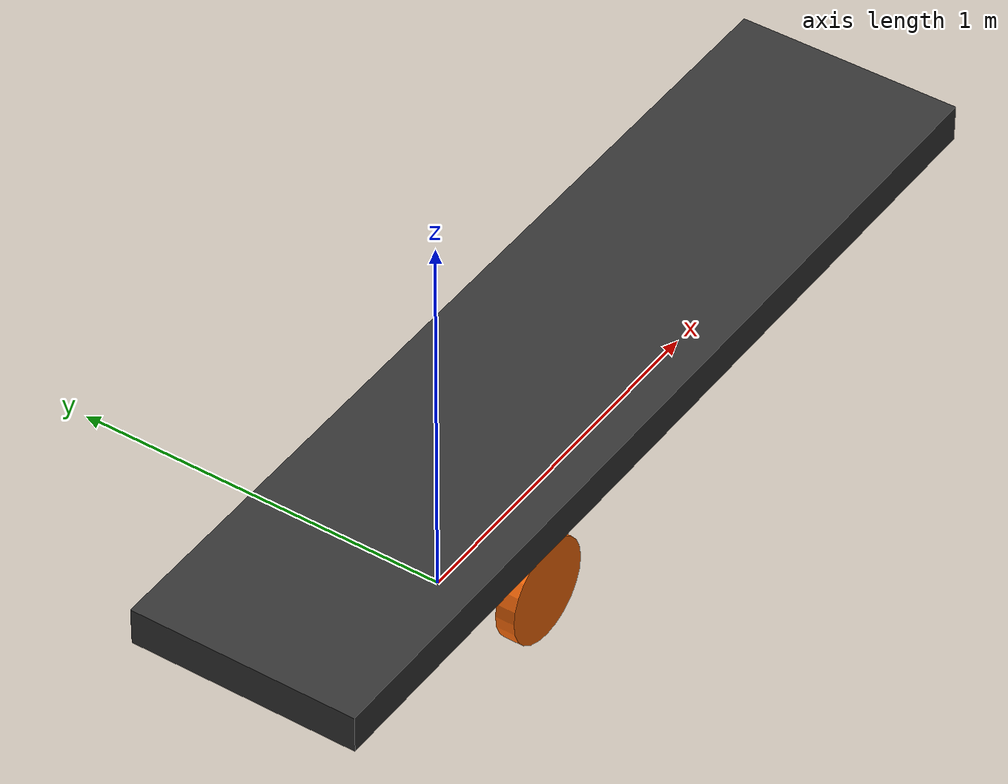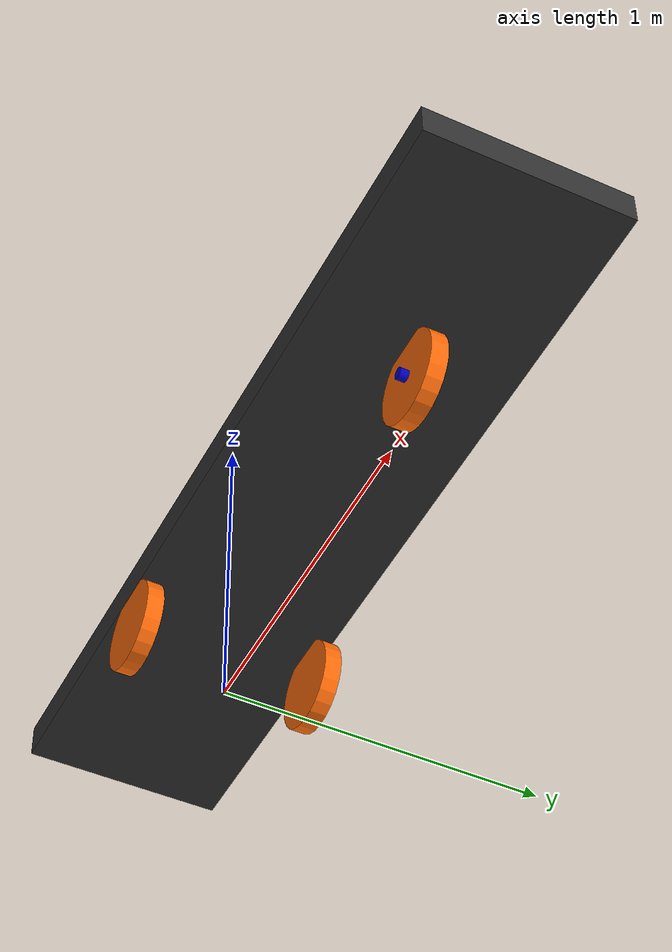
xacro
<?xml version="1.0"?>
<robot xmlns:xacro="http://www.ros.org/wiki/xacro" name="tricycle" >

  <!-- Import Rviz colors -->
  <xacro:include filename="$(find gazebo_plugins)/test/tricycle_drive/xacro/materials.xacro" />

  <!-- Import robot  -->
  <xacro:include filename="$(find gazebo_plugins)/test/tricycle_drive/xacro/tricycle/tricycle_body.xacro"/>
  <xacro:tricycle_body parent="base_link" meshes="package://gazebo_plugins/test/tricycle_drive/meshes/tricycle"/>
</robot>

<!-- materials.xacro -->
<robot>

  <material name="black">
    <color rgba="0.0 0.0 0.0 1.0"/>
  </material>

  <material name="blue">
    <color rgba="0.0 0.0 0.8 1.0"/>
  </material>

  <material name="green">
    <color rgba="0.0 0.8 0.0 1.0"/>
  </material>

  <material name="grey">
    <color rgba="0.2 0.2 0.2 1.0"/>
  </material>

  <material name="orange">
    <color rgba="${255/255} ${108/255} ${10/255} 1.0"/>
  </material>

  <material name="brown">
    <color rgba="${222/255} ${207/255} ${195/255} 1.0"/>
  </material>

  <material name="red">
    <color rgba="0.8 0.0 0.0 1.0"/>
  </material>

  <material name="white">
    <color rgba="1.0 1.0 1.0 1.0"/>
  </material>

</robot>

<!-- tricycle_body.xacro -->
<robot xmlns:xacro="http://www.ros.org/wiki/xacro">
  <xacro:property name="M_PI" value="3.1415926535897931" />
  <xacro:property name="radius_actuated_wheel" value="0.135" />
  <xacro:property name="radius_encoder_wheel" value="0.135" />

  <xacro:include filename="inertia_tensors.xacro"/>
  <xacro:include filename="tricycle_chassis.xacro"/>
  <xacro:include filename="wheel.xacro"/>
  <xacro:include filename="wheel_actuated.xacro"/>
  <xacro:include filename="tricycle_plugins.xacro"/>

  <xacro:macro name="tricycle_body" params="parent meshes">

    <!-- base_link -->
    <link name="${parent}"/>

    <!-- Chassis -->
    <xacro:tricycle_chassis name="chassis" parent="${parent}" xyz="0.5 0 0.3" rpy="0 0 0"  meshes="${meshes}"/>

    <!-- Wheels  -->
    <xacro:wheel name="right"   parent="${parent}"  xyz="0.0   0.274 ${radius_encoder_wheel}" rpy="${-M_PI/2} 0 0" radius="${radius_encoder_wheel}" length="0.05" meshes="${meshes}"/>
    <xacro:wheel name="left"    parent="${parent}"  xyz="0.0  -0.274 ${radius_encoder_wheel}" rpy="${-M_PI/2} 0 0" radius="${radius_encoder_wheel}" length="0.05" meshes="${meshes}"/>
    <xacro:wheel_actuated name="front"  parent="${parent}"  xyz="1.14  0.0   ${radius_actuated_wheel}" rpy="${-M_PI/2} 0 0" radius="${radius_actuated_wheel}" length="0.05" meshes="${meshes}"/>

    <!-- Motor plugin -->
    <xacro:tricycle_drive />

  </xacro:macro>
</robot>

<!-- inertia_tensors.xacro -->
<!-- Thanks to Martin Guenther
  see https://github.com/uos/uos_tools/blob/fuerte/uos_common_urdf/common.xacro and
  see http://answers.gazebosim.org/question/4372/the-inertia-matrix-explained/ -->
<robot xmlns:xacro="http://ros.org/wiki/xacro">
  <xacro:property name="M_PI" value="3.1415926535897931" />

  <!-- see https://secure.wikimedia.org/wikipedia/en/wiki/List_of_moment_of_inertia_tensors -->

  <!-- #################### versions without origin #################### -->
  <xacro:macro name="sphere_inertial" params="radius mass">
    <inertial>
      <mass value="${mass}" />
      <origin xyz="0 0 0" />
      <inertia ixx="${0.4 * mass * radius * radius}" ixy="0.0" ixz="0.0"
        iyy="${0.4 * mass * radius * radius}" iyz="0.0"
        izz="${0.4 * mass * radius * radius}" />
    </inertial>
  </xacro:macro>

  <xacro:macro name="cylinder_inertial" params="radius length mass">
    <inertial>
      <mass value="${mass}" />
      <origin xyz="0 0 0" />
      <inertia ixx="${0.0833333 * mass * (3 * radius * radius + length * length)}" ixy="0.0" ixz="0.0"
        iyy="${0.0833333 * mass * (3 * radius * radius + length * length)}" iyz="0.0"
        izz="${0.5 * mass * radius * radius}" />
    </inertial>
  </xacro:macro>

  <xacro:macro name="box_inertial" params="x y z mass">
    <inertial>
      <mass value="${mass}" />
      <origin xyz="0 0 0" />
      <inertia ixx="${0.0833333 * mass * (y*y + z*z)}" ixy="0.0" ixz="0.0"
        iyy="${0.0833333 * mass * (x*x + z*z)}" iyz="0.0"
        izz="${0.0833333 * mass * (x*x + y*y)}" />
    </inertial>
  </xacro:macro>

  <!-- #################### versions with origin #################### -->
  <xacro:macro name="sphere_inertial_with_origin" params="radius mass *origin">
    <inertial>
      <mass value="${mass}" />
      <xacro:insert_block name="origin" />
      <inertia ixx="${0.4 * mass * radius * radius}" ixy="0.0" ixz="0.0"
        iyy="${0.4 * mass * radius * radius}" iyz="0.0"
        izz="${0.4 * mass * radius * radius}" />
    </inertial>
  </xacro:macro>

  <xacro:macro name="cylinder_inertial_with_origin" params="radius length mass *origin">
    <inertial>
      <mass value="${mass}" />
      <xacro:insert_block name="origin" />
      <inertia ixx="${0.0833333 * mass * (3 * radius * radius + length * length)}" ixy="0.0" ixz="0.0"
        iyy="${0.0833333 * mass * (3 * radius * radius + length * length)}" iyz="0.0"
        izz="${0.5 * mass * radius * radius}" />
    </inertial>
  </xacro:macro>

  <xacro:macro name="box_inertial_with_origin" params="x y z mass origin">
    <inertial>
      <mass value="${mass}" />
      <origin xyz="${origin}" />
      <inertia ixx="${0.0833333 * mass * (y*y + z*z)}" ixy="0.0" ixz="0.0"
        iyy="${0.0833333 * mass * (x*x + z*z)}" iyz="0.0"
        izz="${0.0833333 * mass * (x*x + y*y)}" />
    </inertial>
  </xacro:macro>

</robot>

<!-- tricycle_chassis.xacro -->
<robot xmlns:xacro="http://ros.org/wiki/xacro">
  <xacro:property name="M_PI" value="3.1415926535897931" />
  <xacro:property name="DX" value="2.500" />
  <xacro:property name="DY" value="0.60" />
  <xacro:property name="DZ" value="0.1" />

  <xacro:macro name="tricycle_chassis" params="name parent xyz rpy meshes">

  <!-- Chassis -->
  <joint name="${parent}_${name}_joint" type="fixed">
    <origin xyz="${xyz}" rpy="${rpy}"/>
    <parent link="${parent}"/>
    <child link="${name}"/>
  </joint>
  <link name="${name}">
    <visual name="${name}_visual">
      <geometry name="${name}_geometry">
        <box size="${DX} ${DY} ${DZ}"/>
      </geometry>
      <material name="grey"/>
    </visual>
    <collision>
      <geometry>
        <box size="${DX} ${DY} ${DZ}"/>
      </geometry>
    </collision>
    <xacro:box_inertial x="${DX}" y="${DY}"  z="${DZ}" mass="100.0"/>
  </link>

  <gazebo reference="${name}">
    <material value="Gazebo/Grey"/>
  </gazebo>

  </xacro:macro>

</robot>

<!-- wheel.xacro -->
<robot
  xmlns:xacro="http://ros.org/wiki/xacro">
  <xacro:property name="M_PI" value="3.1415926535897931" />

  <xacro:macro name="wheel" params="name parent xyz rpy radius length meshes">

  <!-- Wheel -->
  <joint name="${name}_wheel_joint" type="continuous">
    <origin xyz="${xyz}" rpy="${rpy}"/>
    <parent link="${parent}"/>
    <child link="${name}_wheel"/>
    <axis xyz="0 0 1"/>
    <anchor xyz="0 0 0"/>
    <limit effort="100" velocity="100" k_velocity="0"/>
    <joint_properties damping="0.0" friction="0.0"/>
  </joint>
  <link name="${name}_wheel">
    <visual name="${name}_wheel_visual">
      <origin xyz="0 0 0" rpy="0 0 0"/>
      <geometry name="{name}_wheel_geometry">
        <cylinder radius="${radius}" length="${length}"/>
      </geometry>
      <material name="orange"/>
    </visual>
    <collision>
      <origin xyz="0 0 0" rpy="0 0 0"/>
      <geometry>
        <cylinder radius="${radius}" length="${length}"/>
      </geometry>
    </collision>
    <xacro:cylinder_inertial radius="${radius}" length="${length}" mass="1.0" />
  </link>
  <gazebo reference="${name}_wheel">
    <material value="Gazebo/Wood"/>
  </gazebo>

  </xacro:macro>

</robot>

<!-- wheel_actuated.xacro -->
<robot xmlns:xacro="http://ros.org/wiki/xacro">
  <xacro:property name="M_PI" value="3.1415926535897931" />

  <xacro:macro name="wheel_actuated" params="name parent xyz rpy radius length meshes">

  <!-- steering joint -->
  <joint name="${name}_steering_joint" type="continuous">
    <origin xyz="${xyz}" rpy="${rpy}"/>
    <parent link="${parent}"/>
    <child link="${name}_steering"/>
    <axis xyz="0 1 0"/>
    <anchor xyz="0 0 0"/>
    <limit effort="100" velocity="100" k_velocity="0"/>
    <joint_properties damping="0.0" friction="0.0"/>
  </joint>
  <link name="${name}_steering">
    <visual name="${name}_visual">
      <origin xyz="0 0 0" rpy="0 0 0"/>
      <geometry name="${name}_geometry">
        <cylinder radius="${radius / 8.0}" length="${length * 2}"/>
      </geometry>
      <material name="blue"/>
    </visual>
    <xacro:cylinder_inertial radius="${radius / 8.0}" length="${length* 2}" mass="1.0" />
  </link>
  <gazebo reference="${name}_steering">
    <material value="Gazebo/Blue"/>
  </gazebo>

  <!-- wheel joint -->
  <xacro:wheel name="${name}"  parent="${name}_steering"  xyz="0 0 0" rpy="0 0 0" radius="${radius}" length="${length}" meshes="${meshes}"/>

  </xacro:macro>

</robot>
